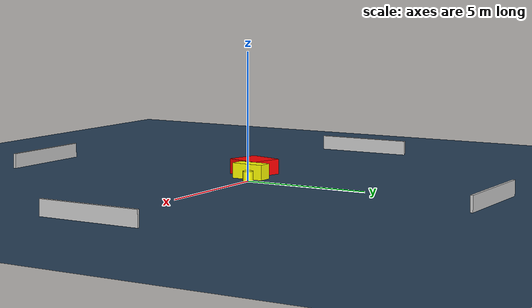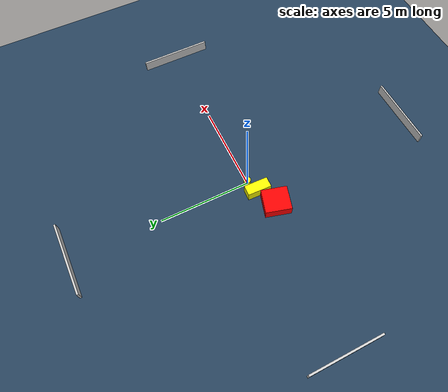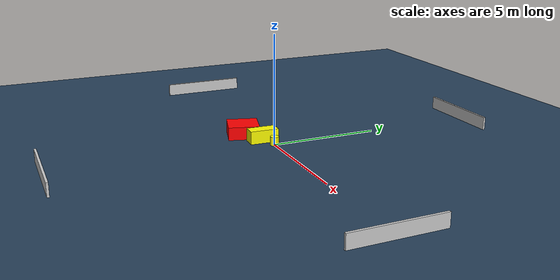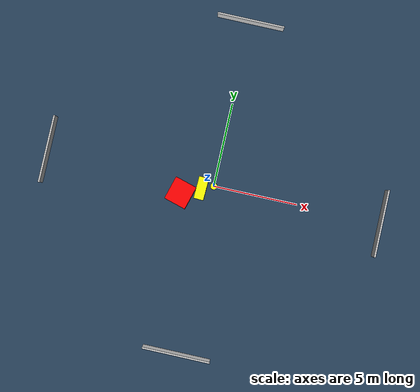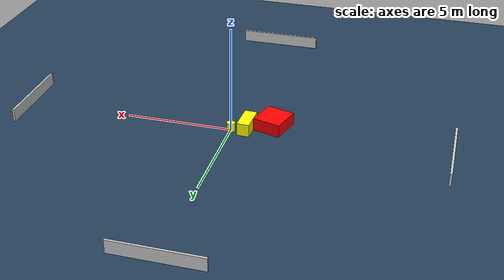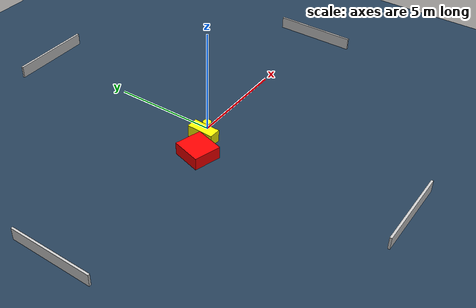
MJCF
<?xml version="1.0" ?>
<mujoco model="generated_environment">
  <option timestep="0.01" integrator="RK4" cone="elliptic"/>
  <default>
    <geom density="1"/>
  </default>
  <asset>
    <texture builtin="gradient" height="3072" name="skybox" rgb1="0.3 0.5 0.7" rgb2="0 0 0" type="skybox" width="512"/>
    <texture builtin="checker" height="300" name="groundplane" rgb1="0.2 0.3 0.4" rgb2="0.1 0.2 0.3" type="2d" width="300"/>
    <material name="groundplane" reflectance="0.2" texrepeat="5 5" texture="groundplane"/>
  </asset>
  <worldbody>
    <light dir="0 0 -1" directional="true" pos="0 0 1.5"/>
    <geom condim="3" friction="0.5 0.005 0.001" material="groundplane" name="floor" pos="0 0 0" size="0 0 0.05" type="plane"/>
    <body name="walls">
      <geom name="wall_1" condim="4" pos="-10.0 0.0 0.3" rgba="0.800000011920929 0.800000011920929 0.800000011920929 1.0" size="0.05 2.0 0.3" type="box"/>
      <geom name="wall_2" condim="4" pos="10.0 0.0 0.3" rgba="0.800000011920929 0.800000011920929 0.800000011920929 1.0" size="0.05 2.0 0.3" type="box"/>
      <geom name="wall_3" condim="4" pos="0.0 -10.0 0.3" rgba="0.800000011920929 0.800000011920929 0.800000011920929 1.0" size="2.0 0.05 0.3" type="box"/>
      <geom name="wall_4" condim="4" pos="0.0 10.0 0.3" rgba="0.800000011920929 0.800000011920929 0.800000011920929 1.0" size="2.0 0.05 0.3" type="box"/>
    </body>
    <body name="robot">
      <joint name="joint_x" type="slide" pos="0 0 0" axis="1 0 0"/>
      <joint name="joint_y" type="slide" pos="0 0 0" axis="0 1 0"/>
      <geom name="robot" type="cylinder" pos="0.0 0.0 0.2" size="0.2 0.2 0.0" mass="5.0" friction="1.0 0.005 0.0001" condim="4" rgba="1.0 1.0 0.0 1.0"/>
    </body>
    <body name="obstacle_1_movable">
      <geom name="obstacle_1_movable" condim="4" pos="-0.6853283470997362 -0.28529389624234325 0.3" euler="0 0 87.72868657322321" friction="0.0 0.005 0.001" rgba="1.0 1.0 0.0 1.0" size="0.6601693042261241 0.28932064023507326 0.3" type="box" mass="0.1"/>
      <joint type="free"/>
    </body>
    <body name="obstacle_2_static">
      <geom name="obstacle_2_static" condim="4" pos="-1.815020768330744 -0.804926867744997 0.3" euler="0 0 344.03663862404164" friction="0.0 0.005 0.001" rgba="1.0 0.0 0.0 1.0" size="0.6669172876878282 0.712211064788816 0.3" type="box"/>
    </body>
  </worldbody>
  <actuator>
    <motor name="actuator_x" joint="joint_x" gear="1" ctrlrange="-1 1"/>
    <motor name="actuator_y" joint="joint_y" gear="1" ctrlrange="-1 1"/>
  </actuator>
</mujoco>
